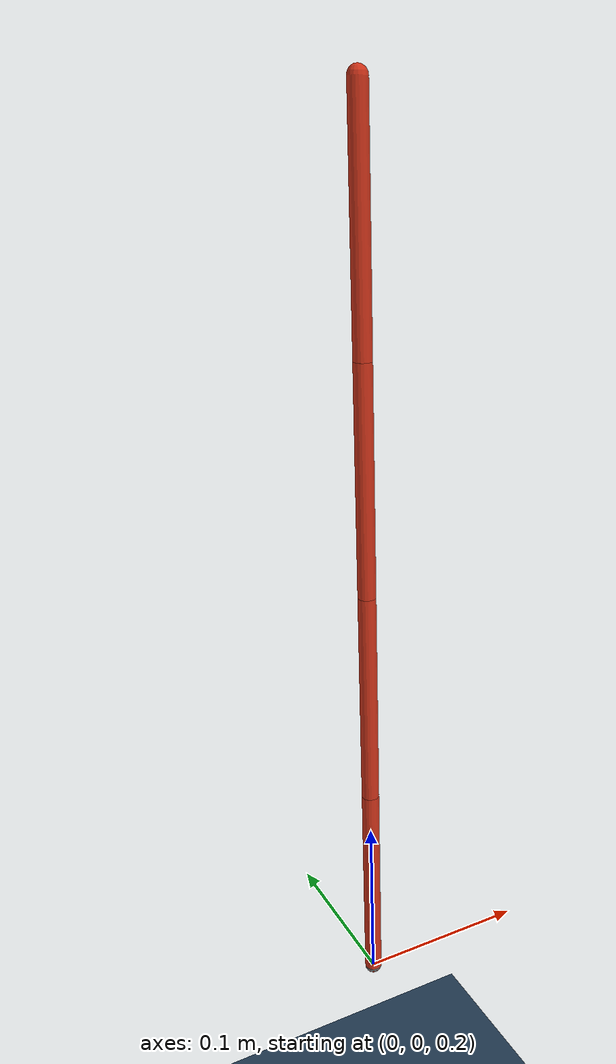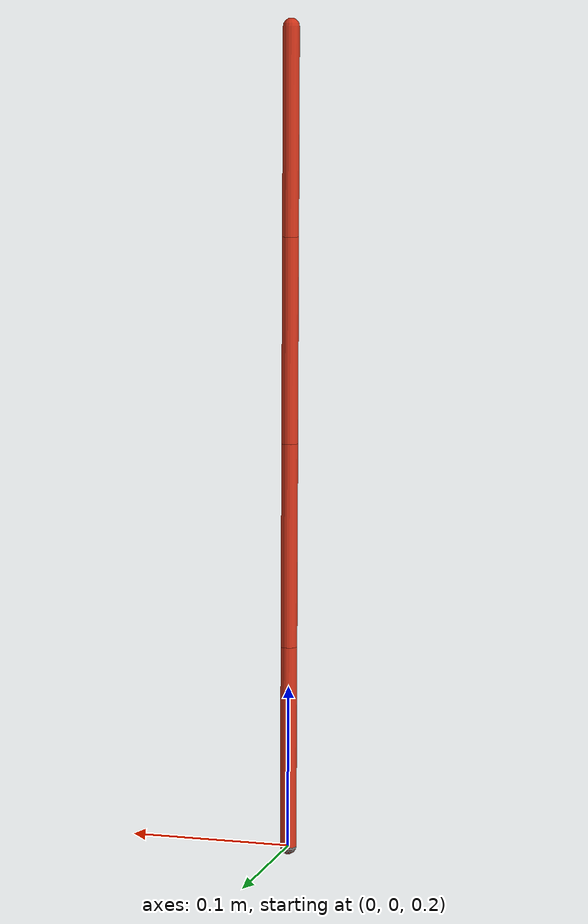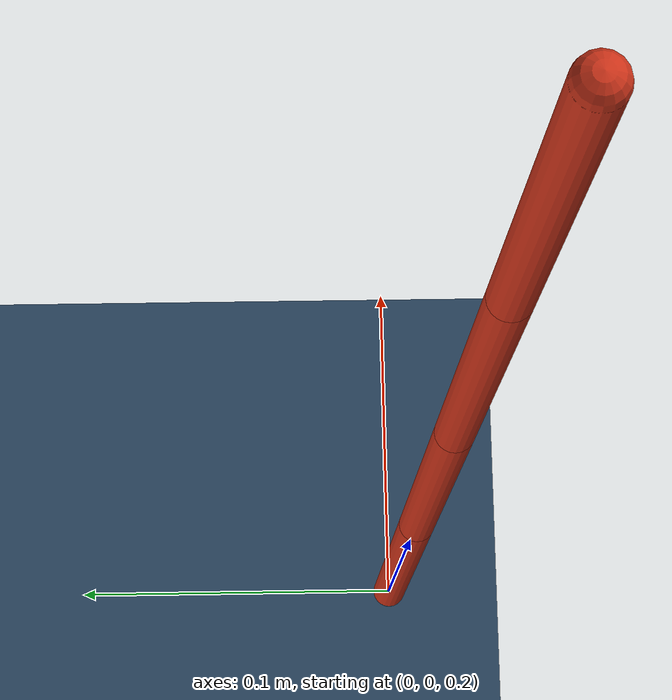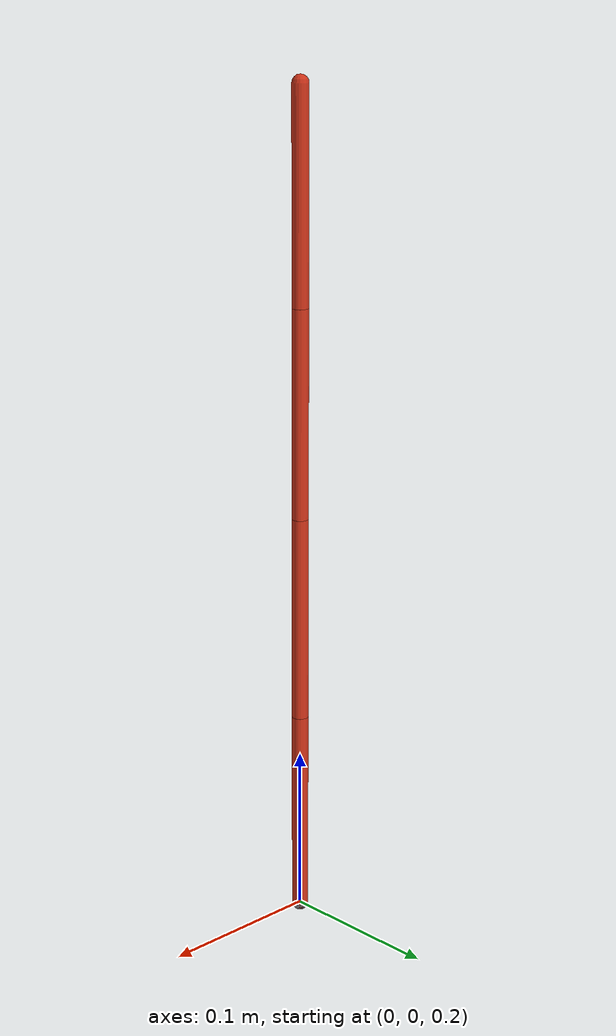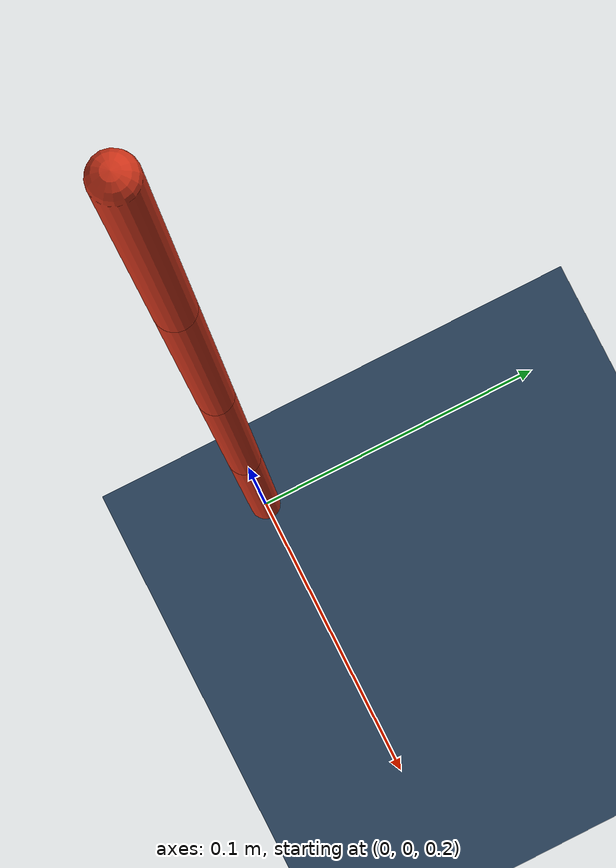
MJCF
<mujoco model="cable_trunk_model_example">
  <compiler angle="radian"/>

  <extension>
    <plugin plugin="mujoco.elasticity.cable"/>
  </extension>

  <custom>
    <text name="composite_actuated" data="rope_actuated"/>
  </custom>

  <asset>
    <texture type="2d" name="grid" builtin="checker" rgb1="0.1 0.2 0.3" rgb2="0.2 0.3 0.4" width="300" height="300"/>
    <material name="grid" texture="grid" texrepeat="8 8" reflectance="0.2"/>
  </asset>

  <worldbody>
    <camera name="yz_view" pos="0 -1.3 0.35" xyaxes="1 0 0 0 0 1"/>
    <geom size="10 10 0.01" type="plane" material="grid"/>
    <light pos="0 0 2" dir="0 0 -1"/>
    <body name="actuatedB_first" pos="0 0 0.7" quat="0 -0.707107 0 0.707107">
      <joint name="actuatedJ_0" pos="0 0 0" type="hinge" axis="0 1 0" group="3" stiffness="0.9" actuatorfrclimited="false" damping="0.044"/>
      <geom name="actuatedG0" size="0.005 0.0625" pos="0.0625 0 0" quat="0.707107 0 -0.707107 0" type="capsule" rgba="0.8 0.2 0.1 1"/>
      <site name="actuatedS_first" pos="0 0 0" group="3"/>
      <body name="actuatedB_1" pos="0.125 0 0">
        <joint name="actuatedJ_1" pos="0 0 0" type="hinge" axis="0 1 0" group="3" stiffness="0.9" actuatorfrclimited="false" damping="0.044"/>
        <geom name="actuatedG1" size="0.005 0.0625" pos="0.0625 0 0" quat="0.707107 0 -0.707107 0" type="capsule" rgba="0.8 0.2 0.1 1"/>
        <body name="actuatedB_2" pos="0.125 0 0">
          <joint name="actuatedJ_2" pos="0 0 0" type="hinge" axis="0 1 0" group="3" stiffness="0.9" actuatorfrclimited="false" damping="0.044"/>
          <geom name="actuatedG2" size="0.005 0.0625" pos="0.0625 0 0" quat="0.707107 0 -0.707107 0" type="capsule" rgba="0.8 0.2 0.1 1"/>
          <body name="actuatedB_last" pos="0.125 0 0">
            <joint name="actuatedJ_3" pos="0 0 0" type="hinge" axis="0 1 0" group="3" stiffness="0.9" actuatorfrclimited="false" damping="0.044"/>
            <geom name="actuatedG3" size="0.005 0.0625" pos="0.0625 0 0" quat="0.707107 0 -0.707107 0" type="capsule" rgba="0.8 0.2 0.1 1"/>
            <site name="actuatedS_last" pos="0.125 0 0" group="3"/>
            <site name="endeffector" pos="0.125 0 0"/>
          </body>
        </body>
      </body>
    </body>
  </worldbody>

   <actuator>
    <motor name="actuator_0" joint="actuatedJ_0" gear="2"/>
    <motor name="actuator_1" joint="actuatedJ_1" gear="2"/>
    <motor name="actuator_2" joint="actuatedJ_2" gear="2"/>
    <motor name="actuator_3" joint="actuatedJ_3" gear="2"/>
  </actuator>

  <contact>
    <exclude body1="actuatedB_first" body2="actuatedB_1"/>
    <exclude body1="actuatedB_1" body2="actuatedB_2"/>
    <exclude body1="actuatedB_2" body2="actuatedB_last"/>
  </contact>

  <visual>
  <global offwidth="1920" offheight="1080"/>
  </visual>

</mujoco>
